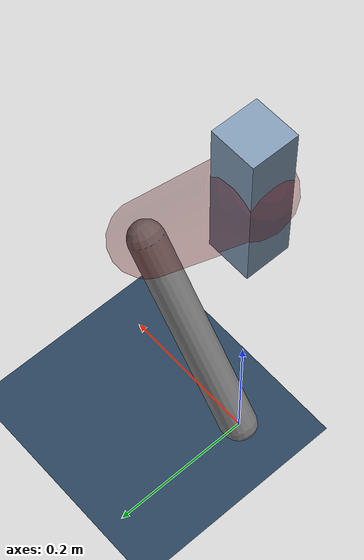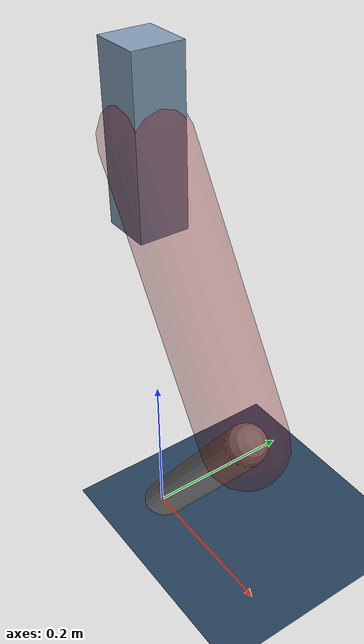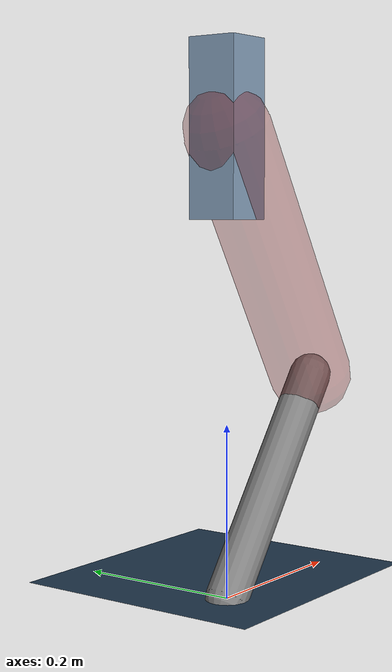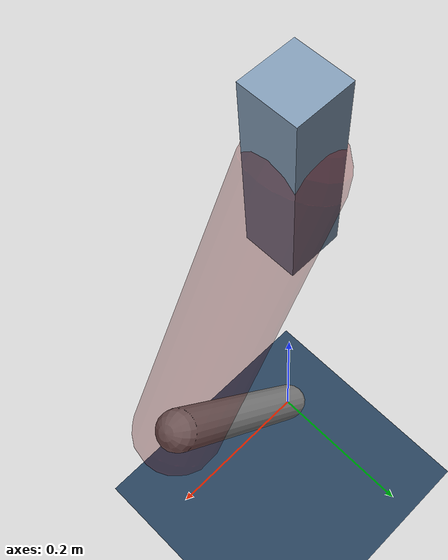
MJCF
<mujoco model="Hopper2D">
	<compiler inertiafromgeom="true" angle="radian" />
	<option timestep="0.001" integrator="implicit" cone="elliptic" solver="Newton" tolerance="1e-10" />

	<default>
		<geom contype="1" conaffinity="1" condim="3" friction="2 0.005 0.0001" solref="0.005 1" />
		<joint limited="true" damping="0.1" />
	</default>

	<asset>
		<texture name="skybox" type="skybox" builtin="gradient" rgb1=".4 .6 .8" rgb2="0 0 0" width="800" height="800" />
		<texture name="grid" type="2d" builtin="checker" rgb1=".1 .2 .3" rgb2=".2 .3 .4" width="300" height="300" mark="edge" markrgb=".2 .3 .4" />
		<material name="ground" texture="grid" texrepeat="1 1" texuniform="true" reflectance="0.1" />
		<material name="leg" rgba="0.5 0.6 0.7 1" />
	</asset>

	<worldbody>

		<geom name="floor" type="plane" size="5 5 0.25" material="ground" />

		<light directional="false" diffuse="0.8 0.8 0.8" specular="0.3 0.3 0.3" pos="0 0 2" dir="0 0 -1" />
		<light mode="targetbodycom" target="base" directional="false" diffuse="0.8 0.8 0.8" specular="0.3 0.3 0.3" pos="0 0 2" dir="0 0 -1" />

		<camera name="fixed" pos="0 -2 1" xyaxes="1 0 0 0 0 1" />
		<camera name="tracking" mode="trackcom" pos="0 -3 1" />

		<body name="root" pos="0 0 0.5320210545614492">
			<joint name="slide_x" type="slide" axis="1 0 0" range="-100 100" />
			<joint name="slide_z" type="slide" axis="0 0 1" range="0 10" />

			<body name="base" pos="0 0 0">
				<geom name="torso" type="box" size="0.03 0.03 0.1" mass="2.4669999999999996" material="leg" />

				<body name="link1" pos="0 0 0" euler="0 1.0233897473962572 0">
					<joint type="hinge" axis="0 -1 0" pos="0 0 0" name="hinge1" limited="true" range="-3.14 3.14" stiffness="0" damping="0.1" />
					<geom name="thigh" type="capsule" fromto="0 0 0 0.33999424998923183 0 0" size="0.05" rgba="0.5 0 0 0.3" mass="1.0986838999698492" />

					<body name="link2" pos="0.33999424998923183 0 0" euler="0 1.1793640301028416 0">
						<joint type="hinge" axis="0 -1 0" pos="0 0 0" name="hinge2" limited="true" range="-3.14 3.14" stiffness="0" damping="0.1" />
						<geom name="shank" type="capsule" fromto="0 0 0 0.29956113788985017 0 0" size="0.025" mass="0.48304891031188013" />

					</body>
				</body>
			</body>
		</body>
	</worldbody>

	<actuator>
		<motor name="torque1" joint="hinge1" ctrlrange="-18.475117249320718 18.475117249320718" ctrllimited="true" gear="1" />
		<motor name="torque2" joint="hinge2" ctrlrange="-107.07891681099447 107.07891681099447" ctrllimited="true" gear="1" />
	</actuator>
</mujoco>
